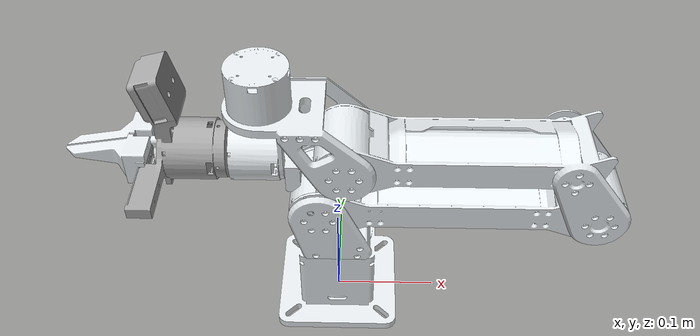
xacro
<?xml version="1.0"?>
<robot xmlns:xacro="http://www.ros.org/wiki/xacro" name="zk_xm115_00_description">
  <xacro:arg name="initial_positions_file" default="$(find zekeep_moveit_config)/config/initial_positions.yaml"/>

  <xacro:include filename="$(find zekeep_bringup)/description/urdf/sixaxis.urdf"/>
  <xacro:include filename="$(find zekeep_moveit_config)/config/zekeep.ros2_control.xacro"/>

  <link name="world"/>
  <joint name="world_to_base" type="fixed">
    <origin xyz="0 0 0" rpy="0 0 3.141592653589793"/>
    <parent link="world"/>
    <child link="base_link"/>
  </joint>

  <xacro:zekeep_ros2_control name="ZekeepMockSystem" initial_positions_file="$(arg initial_positions_file)"/>
</robot>

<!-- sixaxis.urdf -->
<robot name="zk_xm115_00_description">

  <material name="light_grey">
    <color rgba="0.89804 0.91765 0.92941 1" />
  </material>
  <material name="dark_grey">
    <color rgba="0.64706 0.64706 0.64706 1" />
  </material>

  <link name="base_link">
    <inertial>
      <origin xyz="-0.007131 0.001945 0.043144" rpy="0 0 0" />
      <mass value="0.916" />
      <inertia ixx="0.002185445" ixy="-0.000227209" ixz="-0.000723781" iyy="0.003441872" iyz="0.000200330" izz="0.002680529" />
    </inertial>
    <visual>
      <origin xyz="0 0 0" rpy="0 0 0" />
      <geometry>
        <mesh filename="package://zekeep_bringup/description/meshes/base_link.STL" />
      </geometry>
      <material name="light_grey" />
    </visual>
    <collision>
      <origin xyz="0 0 0" rpy="0 0 0" />
      <geometry>
        <mesh filename="package://zekeep_bringup/description/meshes/base_link.STL" />
      </geometry>
    </collision>
  </link>

  <link name="link1">
    <inertial>
      <origin xyz="-0.00721199856 0.000698341 0.045955638" rpy="0 0 0" />
      <mass value="0.735" />
      <inertia ixx="0.000175065" ixy="0.000000212" ixz="0.000015081" iyy="0.000196979" iyz="-0.000000247" izz="0.000192343" />
    </inertial>
    <visual>
      <origin xyz="0 0 0" rpy="0 0 0" />
      <geometry>
        <mesh filename="package://zekeep_bringup/description/meshes/link1.STL" />
      </geometry>
      <material name="light_grey" />
    </visual>
    <collision>
      <origin xyz="0 0 0" rpy="0 0 0" />
      <geometry>
        <mesh filename="package://zekeep_bringup/description/meshes/link1.STL" />
      </geometry>
    </collision>
  </link>

  <link name="link2">
    <inertial>
      <origin xyz="0.197269 -0.000018 -0.030544" rpy="0 0 0" />
      <mass value="0.768" />
      <inertia ixx="0.000476697" ixy="-0.000002947" ixz="0.000055442" iyy="0.005877765" iyz="0.000000856" izz="0.005694930" />
    </inertial>
    <visual>
      <origin xyz="0 0 0" rpy="0 0 0" />
      <geometry>
        <mesh filename="package://zekeep_bringup/description/meshes/link2.STL" />
      </geometry>
      <material name="light_grey" />
    </visual>
    <collision>
      <origin xyz="0 0 0" rpy="0 0 0" />
      <geometry>
        <mesh filename="package://zekeep_bringup/description/meshes/link2.STL" />
      </geometry>
    </collision>
  </link>

  <link name="link3">
    <inertial>
      <origin xyz="0.146501 0.048525 0.030587" rpy="0 0 0" />
      <mass value="0.859" />
      <inertia ixx="0.000915548" ixy="0.000691174" ixz="-0.000116795" iyy="0.008789562" iyz="-0.000011161" izz="0.008645906" />
    </inertial>
    <visual>
      <origin xyz="0 0 0" rpy="0 0 0" />
      <geometry>
        <mesh filename="package://zekeep_bringup/description/meshes/link3.STL" />
      </geometry>
      <material name="light_grey" />
    </visual>
    <collision>
      <origin xyz="0 0 0" rpy="0 0 0" />
      <geometry>
        <mesh filename="package://zekeep_bringup/description/meshes/link3.STL" />
      </geometry>
    </collision>
  </link>

  <link name="link4">
    <inertial>
      <origin xyz="0.056244 0.051257 0.031059" rpy="0 0 0" />
      <mass value="0.506" />
      <inertia ixx="0.000635492" ixy="0.000343343" ixz="-0.000002832" iyy="0.000789294" iyz="-0.000002020" izz="0.000897884" />
    </inertial>
    <visual>
      <origin xyz="0 0 0" rpy="0 0 0" />
      <geometry>
        <mesh filename="package://zekeep_bringup/description/meshes/link4.STL" />
      </geometry>
      <material name="light_grey" />
    </visual>
    <collision>
      <origin xyz="0 0 0" rpy="0 0 0" />
      <geometry>
        <mesh filename="package://zekeep_bringup/description/meshes/link4.STL" />
      </geometry>
    </collision>
  </link>

  <link name="link5">
    <inertial>
      <origin xyz="-0.003856035728 -0.000000000221 -0.047059240881" rpy="0 0 0" />
      <mass value="0.391" />
      <inertia ixx="0.000225324549" ixy="0.000000000994" ixz="0.000053807136" iyy="0.000285103036" iyz="0.000000036977" izz="0.000227654172" />
    </inertial>
    <visual>
      <origin xyz="0 0 0" rpy="0 0 0" />
      <geometry>
        <mesh filename="package://zekeep_bringup/description/meshes/link5.STL" />
      </geometry>
      <material name="light_grey" />
    </visual>
    <collision>
      <origin xyz="0 0 0" rpy="0 0 0" />
      <geometry>
        <mesh filename="package://zekeep_bringup/description/meshes/link5.STL" />
      </geometry>
    </collision>
  </link>

  <link name="link6">
    <inertial>
      <origin xyz="0.000070 0.010969 0.046197" rpy="0 0 0" />
      <mass value="0.643" />
      <inertia ixx="0.000609430" ixy="0.000002066" ixz="0.000000563" iyy="0.000607333" iyz="0.000071787" izz="0.000843408" />
    </inertial>
    <visual>
      <!-- 只修正 J6 外壳方向，不改变夹指和 TCP 位姿 -->
      <origin xyz="0 0 0" rpy="0 0 1.5707963267948966" />
      <geometry>
        <mesh filename="package://zekeep_bringup/description/meshes/link6.STL" />
      </geometry>
      <material name="dark_grey" />
    </visual>
    <collision>
      <origin xyz="0 0 0" rpy="0 0 1.5707963267948966" />
      <geometry>
        <mesh filename="package://zekeep_bringup/description/meshes/link6.STL" />
      </geometry>
    </collision>
  </link>

  <joint name="joint1" type="revolute">
    <origin xyz="0 0 0.0725" rpy="0 0 3.1416" />
    <parent link="base_link" />
    <child link="link1" />
    <axis xyz="0 0 -1" />
    <limit lower="-2.58" upper="2.58" effort="27" velocity="8" />
  </joint>

  <joint name="joint2" type="revolute">
    <origin xyz="-0.016376 -0.031625 0.064309" rpy="1.5708 0 0" />
    <parent link="link1" />
    <child link="link2" />
    <axis xyz="0 0 1" />
    <limit lower="0" upper="3.7" effort="27" velocity="8" />
  </joint>

  <joint name="joint3" type="revolute">
    <origin xyz="0.26 0 0" rpy="3.1416 0 3.1416" />
    <parent link="link2" />
    <child link="link3" />
    <axis xyz="0 0 1" />
    <limit lower="0" upper="3.7" effort="27" velocity="8" />
  </joint>

  <joint name="joint4" type="revolute">
    <origin xyz="0.236 0.053693 0.00075" rpy="0 0 0" />
    <parent link="link3" />
    <child link="link4" />
    <axis xyz="0 0 1" />
    <limit lower="-1.57" upper="1.57" effort="12.5" velocity="30" />
  </joint>

  <joint name="joint5" type="revolute">
    <origin xyz="0.0748682393924207 0.0470000537620406 0.0308749462379592" rpy="1.57079632679489 0 3.14159265358979" />
    <parent link="link4" />
    <child link="link5" />
    <axis xyz="0 0 1" />
    <limit lower="-1.57" upper="1.57" effort="12.5" velocity="30" />
  </joint>

  <joint name="joint6" type="revolute">
    <origin xyz="-0.03 0 -0.04675" rpy="1.5707963267948966 0 -1.5707963267948966" />
    <parent link="link5" />
    <child link="link6" />
    <axis xyz="0 0 -1" />
    <limit lower="-1.57" upper="1.57" effort="12.5" velocity="30" />
  </joint>

  <!-- 将分散的 rod_right 和 rod_left 合并进 gripper_base，并更新质量 -->
  <link name="gripper_base">
    <inertial>
      <origin xyz="0.000001 0.000001 0.005660" rpy="0 0 0" />
      <mass value="0.021" />
      <inertia ixx="0.000003038" ixy="0.000000679" ixz="0.0" iyy="0.000002480" iyz="0.0" izz="0.000005094" />
    </inertial>

    <visual>
      <origin xyz="0 0 0" rpy="0 0 0" />
      <geometry>
        <mesh filename="package://zekeep_bringup/description/meshes/gripper_base.STL" />
      </geometry>
      <material name="light_grey" />
    </visual>
    <collision>
      <origin xyz="0 0 0" rpy="0 0 0" />
      <geometry>
        <mesh filename="package://zekeep_bringup/description/meshes/gripper_base.STL" />
      </geometry>
    </collision>

  </link>

  <link name="right_link">
    <inertial>
      <origin xyz="-0.015369 -0.000001 0.088532" rpy="0 0 0" />
      <mass value="0.045195" />
      <inertia ixx="0.000013409" ixy="0.0" ixz="0.000002235" iyy="0.000012302" iyz="0.0" izz="0.000006864" />
    </inertial>
    <visual>
      <origin xyz="0 0 0" rpy="0 0 0" />
      <geometry>
        <mesh filename="package://zekeep_bringup/description/meshes/right_link.STL" />
      </geometry>
      <material name="light_grey" />
    </visual>
    <collision>
      <origin xyz="0 0 0" rpy="0 0 0" />
      <geometry>
        <mesh filename="package://zekeep_bringup/description/meshes/right_link.STL" />
      </geometry>
    </collision>
  </link>

  <link name="left_link">
    <inertial>
      <origin xyz="0.014997 -0.000001 0.088532" rpy="0 0 0" />
      <mass value="0.045195" />
      <inertia ixx="0.000013409" ixy="0.0" ixz="-0.000002235" iyy="0.000012302" iyz="0.0" izz="0.000006864" />
    </inertial>
    <visual>
      <origin xyz="0 0 0" rpy="0 0 0" />
      <geometry>
        <mesh filename="package://zekeep_bringup/description/meshes/left_link.STL" />
      </geometry>
      <material name="light_grey" />
    </visual>
    <collision>
      <origin xyz="0 0 0" rpy="0 0 0" />
      <geometry>
        <mesh filename="package://zekeep_bringup/description/meshes/left_link.STL" />
      </geometry>
    </collision>
  </link>

  <joint name="gripper_base_fixed_joint" type="fixed">
    <origin xyz="0 0 0.056" rpy="0 0 0" />
    <parent link="link6" />
    <child link="gripper_base" />
  </joint>

  <joint name="gripper_joint" type="prismatic">
    <!-- 将 rpy 恢复为 0 0 0 -->
    <origin xyz="0 0 -0.056" rpy="0 0 0" />
    <parent link="gripper_base" />
    <child link="left_link" />
    <axis xyz="1 0 0" />
    <limit lower="0" upper="0.035" effort="10" velocity="0.05" />
  </joint>

  <joint name="right_joint" type="prismatic">
    <!-- 将 rpy 恢复为 0 0 0 -->
    <origin xyz="0 0 -0.056" rpy="0 0 0" />
    <parent link="gripper_base" />
    <child link="right_link" />
    <axis xyz="-1 0 0" />
    <limit lower="0" upper="0.035" effort="10" velocity="0.05" />
    <mimic joint="gripper_joint" multiplier="1" offset="0" />
  </joint>

  <link name="grasp_tcp" />

  <joint name="grasp_tcp_fixed_joint" type="fixed">
    <origin xyz="0 0 0.15539" rpy="0 -1.5708 3.1415" />
    <parent link="link6" />
    <child link="grasp_tcp" />
  </joint>
</robot>
